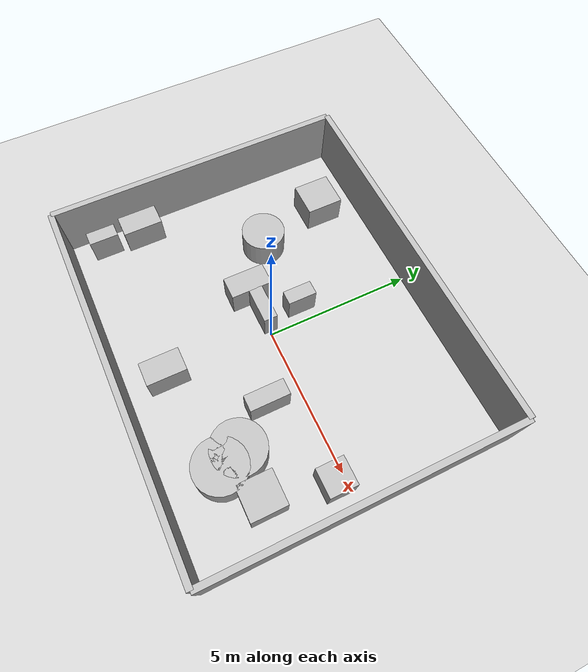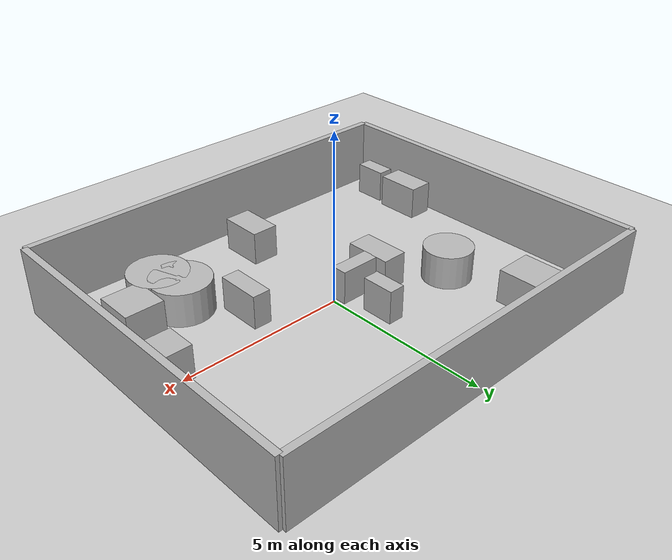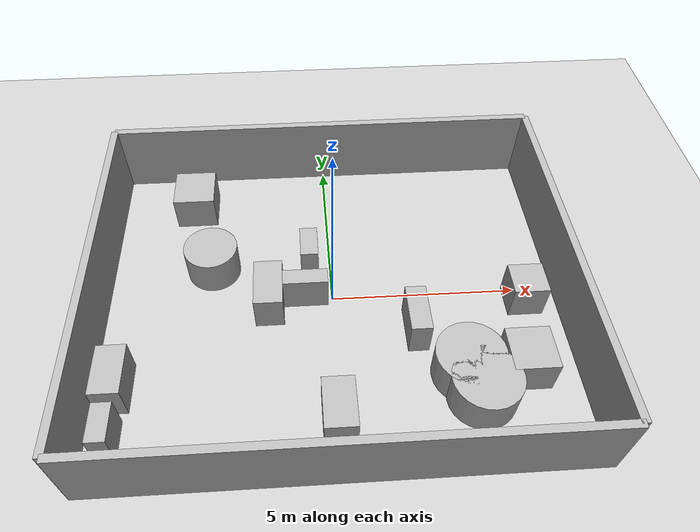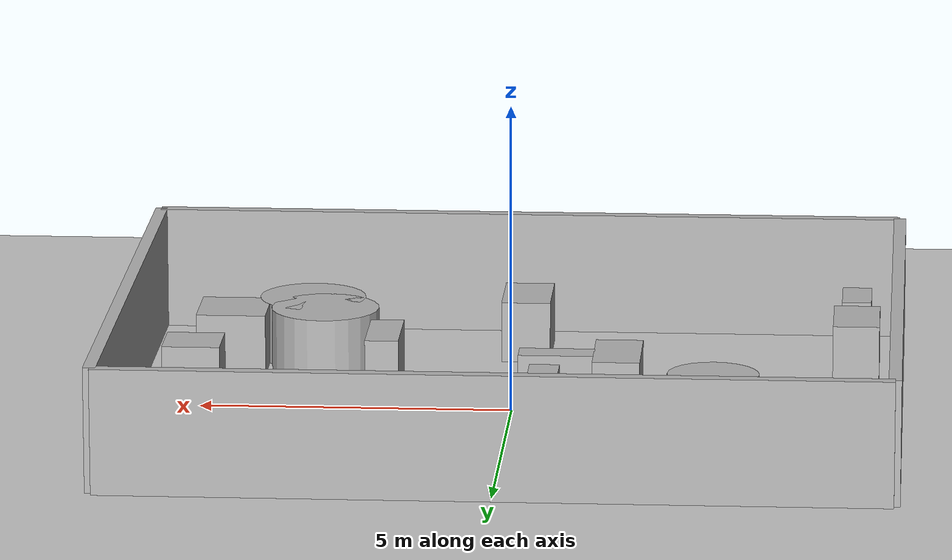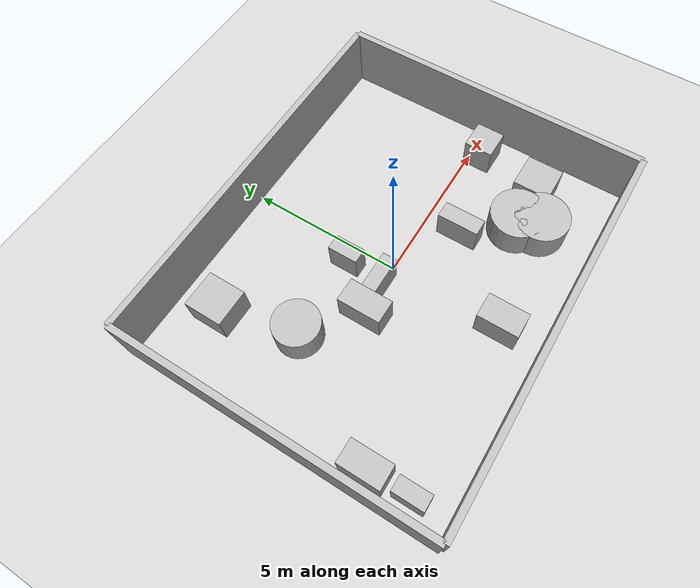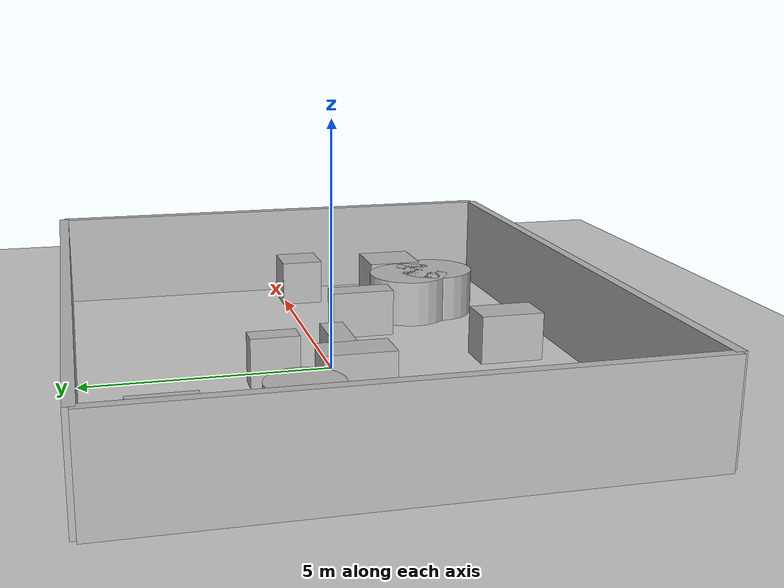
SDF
<?xml version="1.0"?>
<sdf version="1.6">
  <world name="env_33">

    <include><uri>model://ground_plane</uri></include>
    <include><uri>model://sun</uri></include>

    <!-- WALLS -->
    <model name="wall_north"><static>true</static><pose>0 5.089061850648285 1 0 0 0</pose>
      <link name="link"><collision name="collision">
        <geometry><box><size>12.313561867377235 0.2 2</size></box></geometry>
      </collision><visual name="visual">
        <geometry><box><size>12.313561867377235 0.2 2</size></box></geometry>
      </visual></link>
    </model>

    <model name="wall_south"><static>true</static><pose>0 -5.089061850648285 1 0 0 0</pose>
      <link name="link"><collision name="collision">
        <geometry><box><size>12.313561867377235 0.2 2</size></box></geometry>
      </collision><visual name="visual">
        <geometry><box><size>12.313561867377235 0.2 2</size></box></geometry>
      </visual></link>
    </model>

    <model name="wall_east"><static>true</static><pose>6.1567809336886175 0 1 0 0 1.57</pose>
      <link name="link"><collision name="collision">
        <geometry><box><size>10.17812370129657 0.2 2</size></box></geometry>
      </collision><visual name="visual">
        <geometry><box><size>10.17812370129657 0.2 2</size></box></geometry>
      </visual></link>
    </model>

    <model name="wall_west"><static>true</static><pose>-6.1567809336886175 0 1 0 0 1.57</pose>
      <link name="link"><collision name="collision">
        <geometry><box><size>10.17812370129657 0.2 2</size></box></geometry>
      </collision><visual name="visual">
        <geometry><box><size>10.17812370129657 0.2 2</size></box></geometry>
      </visual></link>
    </model>

    <!-- SENSOR -->

    <model name="lidar_sensor">
      <static>true</static>
      <pose>0.47233210379121093 0.6720161893307441 0.4 0 0 0</pose>
      <link name="link">
        <sensor name="lidar" type="ray">
          <pose>0 0 0 0 0 0</pose>
          <visualize>true</visualize>
          <always_on>true</always_on>
          <update_rate>10</update_rate>
          <ray>
            <scan><horizontal>
              <samples>240</samples>
              <resolution>1</resolution>
              <min_angle>-3.14159</min_angle>
              <max_angle>3.14159</max_angle>
            </horizontal></scan>
            <range><min>0.15</min><max>20.0</max><resolution>0.01</resolution></range>
          </ray>
          <plugin name="lidar_plugin" filename="liblidar_plugin.so"/>
        </sensor>
      </link>
    </model>

    <!-- OBSTACLES -->

    <model name="obstacle_0">
      <static>true</static>
      <pose>-5.47793783687642 -3.843584854802674 0.5 0 0 0</pose>
      <link name="link">
        <collision name="collision">
          <geometry><box><size>0.48 0.98 1.0</size></box></geometry>
        </collision>
        <visual name="visual">
          <geometry><box><size>0.48 0.98 1.0</size></box></geometry>
        </visual>
      </link>
    </model>

    <model name="obstacle_1">
      <static>true</static>
      <pose>3.4556169737488354 -3.234463478934533 0.5 0 0 0</pose>
      <link name="link">
        <collision name="collision">
          <geometry><cylinder><radius>0.87</radius><length>1.0</length></cylinder></geometry>
        </collision>
        <visual name="visual">
          <geometry><cylinder><radius>0.87</radius><length>1.0</length></cylinder></geometry>
        </visual>
      </link>
    </model>

    <model name="obstacle_2">
      <static>true</static>
      <pose>-0.060457005763306704 -3.6575261294100585 0.5 0 0 0</pose>
      <link name="link">
        <collision name="collision">
          <geometry><box><size>0.8 1.31 1.0</size></box></geometry>
        </collision>
        <visual name="visual">
          <geometry><box><size>0.8 1.31 1.0</size></box></geometry>
        </visual>
      </link>
    </model>

    <model name="obstacle_3">
      <static>true</static>
      <pose>-3.268728147554539 1.2218220153108277 0.5 0 0 0</pose>
      <link name="link">
        <collision name="collision">
          <geometry><cylinder><radius>0.73</radius><length>1.0</length></cylinder></geometry>
        </collision>
        <visual name="visual">
          <geometry><cylinder><radius>0.73</radius><length>1.0</length></cylinder></geometry>
        </visual>
      </link>
    </model>

    <model name="obstacle_4">
      <static>true</static>
      <pose>-3.8540789413783516 3.6336306136067797 0.5 0 0 0</pose>
      <link name="link">
        <collision name="collision">
          <geometry><box><size>1.16 1.24 1.0</size></box></geometry>
        </collision>
        <visual name="visual">
          <geometry><box><size>1.16 1.24 1.0</size></box></geometry>
        </visual>
      </link>
    </model>

    <model name="obstacle_5">
      <static>true</static>
      <pose>-0.7290359828347892 0.04562062641600395 0.5 0 0 0</pose>
      <link name="link">
        <collision name="collision">
          <geometry><box><size>1.21 0.46 1.0</size></box></geometry>
        </collision>
        <visual name="visual">
          <geometry><box><size>1.21 0.46 1.0</size></box></geometry>
        </visual>
      </link>
    </model>

    <model name="obstacle_6">
      <static>true</static>
      <pose>5.14123907071194 -0.36795261419464786 0.5 0 0 0</pose>
      <link name="link">
        <collision name="collision">
          <geometry><box><size>0.93 0.92 1.0</size></box></geometry>
        </collision>
        <visual name="visual">
          <geometry><box><size>0.93 0.92 1.0</size></box></geometry>
        </visual>
      </link>
    </model>

    <model name="obstacle_7">
      <static>true</static>
      <pose>3.196016026843841 -2.5481374460244868 0.5 0 0 0</pose>
      <link name="link">
        <collision name="collision">
          <geometry><cylinder><radius>0.88</radius><length>1.0</length></cylinder></geometry>
        </collision>
        <visual name="visual">
          <geometry><cylinder><radius>0.88</radius><length>1.0</length></cylinder></geometry>
        </visual>
      </link>
    </model>

    <model name="obstacle_8">
      <static>true</static>
      <pose>2.118700930741662 -1.1388261822964405 0.5 0 0 0</pose>
      <link name="link">
        <collision name="collision">
          <geometry><box><size>0.54 1.33 1.0</size></box></geometry>
        </collision>
        <visual name="visual">
          <geometry><box><size>0.54 1.33 1.0</size></box></geometry>
        </visual>
      </link>
    </model>

    <model name="obstacle_9">
      <static>true</static>
      <pose>4.693999044529637 -2.507265501412565 0.5 0 0 0</pose>
      <link name="link">
        <collision name="collision">
          <geometry><box><size>1.13 1.18 1.0</size></box></geometry>
        </collision>
        <visual name="visual">
          <geometry><box><size>1.13 1.18 1.0</size></box></geometry>
        </visual>
      </link>
    </model>

    <model name="obstacle_10">
      <static>true</static>
      <pose>-5.488486624618722 -2.4733720345124475 0.5 0 0 0</pose>
      <link name="link">
        <collision name="collision">
          <geometry><box><size>0.75 1.34 1.0</size></box></geometry>
        </collision>
        <visual name="visual">
          <geometry><box><size>0.75 1.34 1.0</size></box></geometry>
        </visual>
      </link>
    </model>

    <model name="obstacle_11">
      <static>true</static>
      <pose>-0.5778632240102928 1.2872904753679757 0.5 0 0 0</pose>
      <link name="link">
        <collision name="collision">
          <geometry><box><size>0.48 0.97 1.0</size></box></geometry>
        </collision>
        <visual name="visual">
          <geometry><box><size>0.48 0.97 1.0</size></box></geometry>
        </visual>
      </link>
    </model>

    <model name="obstacle_12">
      <static>true</static>
      <pose>-1.7018857190494798 -0.07134183016388285 0.5 0 0 0</pose>
      <link name="link">
        <collision name="collision">
          <geometry><box><size>0.76 1.4 1.0</size></box></geometry>
        </collision>
        <visual name="visual">
          <geometry><box><size>0.76 1.4 1.0</size></box></geometry>
        </visual>
      </link>
    </model>

  </world>
</sdf>
